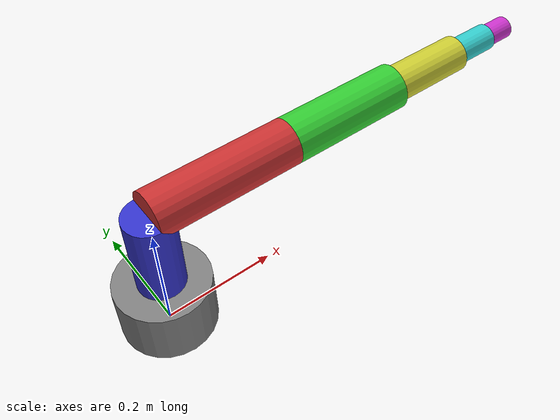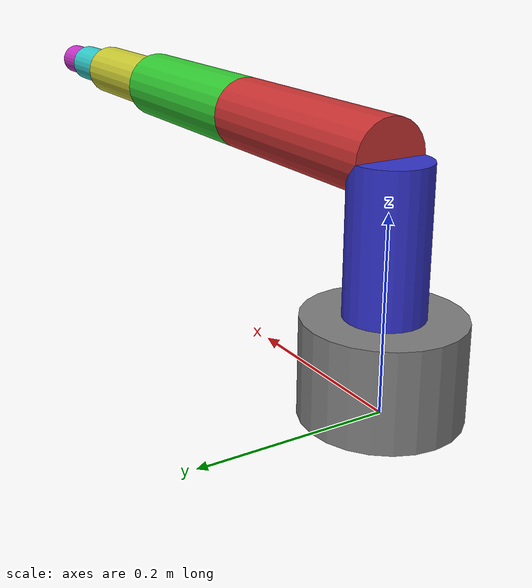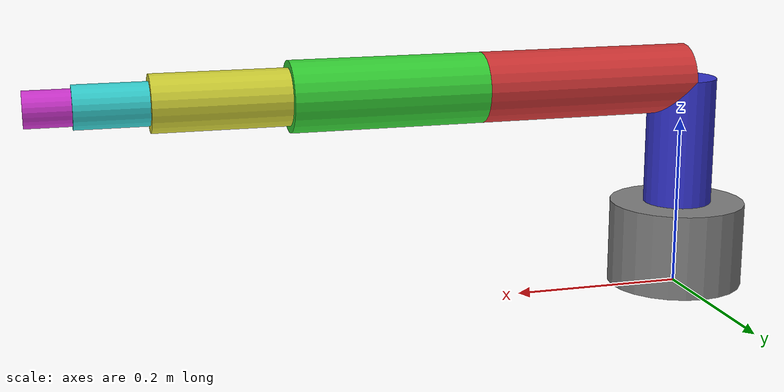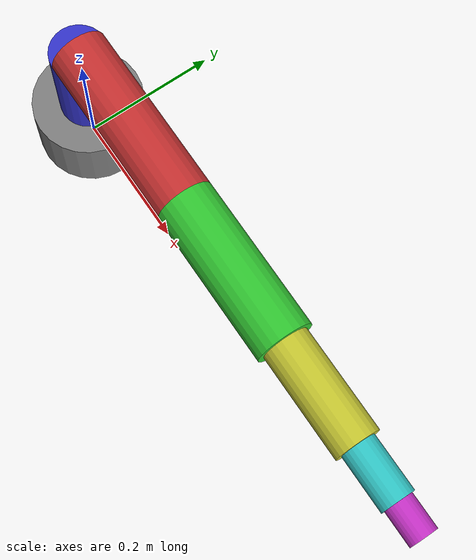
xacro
<?xml version="1.0"?>
<!-- MikataArm 6-axis robot -->
<robot xmlns:xacro="http://www.ros.org/wiki/xacro" name="mikata_arm">
  <xacro:arg name="prefix" default="" />

  <xacro:include filename="$(find mikata_arm_description)/urdf/mikata_arm.xacro" />

  <!-- Import mikata_arm ros2_control description -->

  <link name="$(arg prefix)base_link" />

  <xacro:mikata_arm
      prefix="$(arg prefix)"
      parent="$(arg prefix)base_link">
    <origin
        xyz="0 0 0"
        rpy="0 0 0" />
  </xacro:mikata_arm>

</robot>

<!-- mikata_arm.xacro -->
<robot xmlns:xacro="http://www.ros.org/wiki/xacro">

  <xacro:macro name="mikata_arm" params="prefix parent *origin">

    <!-- Joint properties -->
    <xacro:property name="joint_damping" value="0.5"/>
    <xacro:property name="joint_friction" value="0.1"/>
    <xacro:property name="joint_effort_limit" value="100.0"/>
    <xacro:property name="joint_velocity_limit" value="3.14"/>

    <!-- Link dimensions (approximate values for 6-axis arm) -->
    <xacro:property name="base_height" value="0.1"/>
    <xacro:property name="base_radius" value="0.08"/>

    <xacro:property name="link1_length" value="0.15"/>
    <xacro:property name="link2_length" value="0.25"/>
    <xacro:property name="link3_length" value="0.22"/>
    <xacro:property name="link4_length" value="0.15"/>
    <xacro:property name="link5_length" value="0.08"/>
    <xacro:property name="link6_length" value="0.05"/>

    <xacro:property name="link_radius" value="0.04"/>

    <!-- Base link attachment -->
    <joint name="${prefix}base_joint" type="fixed">
      <xacro:insert_block name="origin"/>
      <parent link="${parent}"/>
      <child link="${prefix}link_base"/>
    </joint>

    <!-- Base Link -->
    <link name="${prefix}link_base">
      <visual>
        <origin xyz="0 0 ${base_height/2}" rpy="0 0 0"/>
        <geometry>
          <cylinder radius="${base_radius}" length="${base_height}"/>
        </geometry>
        <material name="grey">
          <color rgba="0.5 0.5 0.5 1"/>
        </material>
      </visual>
      <collision>
        <origin xyz="0 0 ${base_height/2}" rpy="0 0 0"/>
        <geometry>
          <cylinder radius="${base_radius}" length="${base_height}"/>
        </geometry>
      </collision>
      <inertial>
        <origin xyz="0 0 ${base_height/2}" rpy="0 0 0"/>
        <mass value="1.0"/>
        <inertia ixx="0.001" ixy="0.0" ixz="0.0" iyy="0.001" iyz="0.0" izz="0.001"/>
      </inertial>
    </link>

    <!-- Joint 1: Base rotation -->
    <joint name="${prefix}joint1" type="revolute">
      <parent link="${prefix}link_base"/>
      <child link="${prefix}link1"/>
      <origin xyz="0 0 ${base_height}" rpy="0 0 0"/>
      <axis xyz="0 0 1"/>
      <limit lower="${-pi}" upper="${pi}" effort="${joint_effort_limit}" velocity="${joint_velocity_limit}"/>
      <dynamics damping="${joint_damping}" friction="${joint_friction}"/>
    </joint>

    <!-- Link 1 -->
    <link name="${prefix}link1">
      <visual>
        <origin xyz="0 0 ${link1_length/2}" rpy="0 0 0"/>
        <geometry>
          <cylinder radius="${link_radius}" length="${link1_length}"/>
        </geometry>
        <material name="blue">
          <color rgba="0.2 0.2 0.8 1"/>
        </material>
      </visual>
      <collision>
        <origin xyz="0 0 ${link1_length/2}" rpy="0 0 0"/>
        <geometry>
          <cylinder radius="${link_radius}" length="${link1_length}"/>
        </geometry>
      </collision>
      <inertial>
        <origin xyz="0 0 ${link1_length/2}" rpy="0 0 0"/>
        <mass value="0.5"/>
        <inertia ixx="0.001" ixy="0.0" ixz="0.0" iyy="0.001" iyz="0.0" izz="0.0001"/>
      </inertial>
    </link>

    <!-- Joint 2: Shoulder -->
    <joint name="${prefix}joint2" type="revolute">
      <parent link="${prefix}link1"/>
      <child link="${prefix}link2"/>
      <origin xyz="0 0 ${link1_length}" rpy="0 0 0"/>
      <axis xyz="0 1 0"/>
      <limit lower="${-pi/2}" upper="${pi/2}" effort="${joint_effort_limit}" velocity="${joint_velocity_limit}"/>
      <dynamics damping="${joint_damping}" friction="${joint_friction}"/>
    </joint>

    <!-- Link 2 -->
    <link name="${prefix}link2">
      <visual>
        <origin xyz="${link2_length/2} 0 0" rpy="0 ${pi/2} 0"/>
        <geometry>
          <cylinder radius="${link_radius}" length="${link2_length}"/>
        </geometry>
        <material name="red">
          <color rgba="0.8 0.2 0.2 1"/>
        </material>
      </visual>
      <collision>
        <origin xyz="${link2_length/2} 0 0" rpy="0 ${pi/2} 0"/>
        <geometry>
          <cylinder radius="${link_radius}" length="${link2_length}"/>
        </geometry>
      </collision>
      <inertial>
        <origin xyz="${link2_length/2} 0 0" rpy="0 0 0"/>
        <mass value="0.8"/>
        <inertia ixx="0.001" ixy="0.0" ixz="0.0" iyy="0.004" iyz="0.0" izz="0.004"/>
      </inertial>
    </link>

    <!-- Joint 3: Elbow -->
    <joint name="${prefix}joint3" type="revolute">
      <parent link="${prefix}link2"/>
      <child link="${prefix}link3"/>
      <origin xyz="${link2_length} 0 0" rpy="0 0 0"/>
      <axis xyz="0 1 0"/>
      <limit lower="${-pi}" upper="${pi}" effort="${joint_effort_limit}" velocity="${joint_velocity_limit}"/>
      <dynamics damping="${joint_damping}" friction="${joint_friction}"/>
    </joint>

    <!-- Link 3 -->
    <link name="${prefix}link3">
      <visual>
        <origin xyz="${link3_length/2} 0 0" rpy="0 ${pi/2} 0"/>
        <geometry>
          <cylinder radius="${link_radius}" length="${link3_length}"/>
        </geometry>
        <material name="green">
          <color rgba="0.2 0.8 0.2 1"/>
        </material>
      </visual>
      <collision>
        <origin xyz="${link3_length/2} 0 0" rpy="0 ${pi/2} 0"/>
        <geometry>
          <cylinder radius="${link_radius}" length="${link3_length}"/>
        </geometry>
      </collision>
      <inertial>
        <origin xyz="${link3_length/2} 0 0" rpy="0 0 0"/>
        <mass value="0.6"/>
        <inertia ixx="0.001" ixy="0.0" ixz="0.0" iyy="0.003" iyz="0.0" izz="0.003"/>
      </inertial>
    </link>

    <!-- Joint 4: Wrist roll -->
    <joint name="${prefix}joint4" type="revolute">
      <parent link="${prefix}link3"/>
      <child link="${prefix}link4"/>
      <origin xyz="${link3_length} 0 0" rpy="0 0 0"/>
      <axis xyz="1 0 0"/>
      <limit lower="${-pi}" upper="${pi}" effort="${joint_effort_limit}" velocity="${joint_velocity_limit}"/>
      <dynamics damping="${joint_damping}" friction="${joint_friction}"/>
    </joint>

    <!-- Link 4 -->
    <link name="${prefix}link4">
      <visual>
        <origin xyz="${link4_length/2} 0 0" rpy="0 ${pi/2} 0"/>
        <geometry>
          <cylinder radius="${link_radius*0.8}" length="${link4_length}"/>
        </geometry>
        <material name="yellow">
          <color rgba="0.8 0.8 0.2 1"/>
        </material>
      </visual>
      <collision>
        <origin xyz="${link4_length/2} 0 0" rpy="0 ${pi/2} 0"/>
        <geometry>
          <cylinder radius="${link_radius*0.8}" length="${link4_length}"/>
        </geometry>
      </collision>
      <inertial>
        <origin xyz="${link4_length/2} 0 0" rpy="0 0 0"/>
        <mass value="0.3"/>
        <inertia ixx="0.0005" ixy="0.0" ixz="0.0" iyy="0.001" iyz="0.0" izz="0.001"/>
      </inertial>
    </link>

    <!-- Joint 5: Wrist pitch -->
    <joint name="${prefix}joint5" type="revolute">
      <parent link="${prefix}link4"/>
      <child link="${prefix}link5"/>
      <origin xyz="${link4_length} 0 0" rpy="0 0 0"/>
      <axis xyz="0 1 0"/>
      <limit lower="${-pi/2}" upper="${pi/2}" effort="${joint_effort_limit}" velocity="${joint_velocity_limit}"/>
      <dynamics damping="${joint_damping}" friction="${joint_friction}"/>
    </joint>

    <!-- Link 5 -->
    <link name="${prefix}link5">
      <visual>
        <origin xyz="${link5_length/2} 0 0" rpy="0 ${pi/2} 0"/>
        <geometry>
          <cylinder radius="${link_radius*0.6}" length="${link5_length}"/>
        </geometry>
        <material name="cyan">
          <color rgba="0.2 0.8 0.8 1"/>
        </material>
      </visual>
      <collision>
        <origin xyz="${link5_length/2} 0 0" rpy="0 ${pi/2} 0"/>
        <geometry>
          <cylinder radius="${link_radius*0.6}" length="${link5_length}"/>
        </geometry>
      </collision>
      <inertial>
        <origin xyz="${link5_length/2} 0 0" rpy="0 0 0"/>
        <mass value="0.2"/>
        <inertia ixx="0.0002" ixy="0.0" ixz="0.0" iyy="0.0005" iyz="0.0" izz="0.0005"/>
      </inertial>
    </link>

    <!-- Joint 6: Wrist roll (end effector) -->
    <joint name="${prefix}joint6" type="revolute">
      <parent link="${prefix}link5"/>
      <child link="${prefix}link6"/>
      <origin xyz="${link5_length} 0 0" rpy="0 0 0"/>
      <axis xyz="1 0 0"/>
      <limit lower="${-pi}" upper="${pi}" effort="${joint_effort_limit}" velocity="${joint_velocity_limit}"/>
      <dynamics damping="${joint_damping}" friction="${joint_friction}"/>
    </joint>

    <!-- Link 6 (End effector) -->
    <link name="${prefix}link6">
      <visual>
        <origin xyz="${link6_length/2} 0 0" rpy="0 ${pi/2} 0"/>
        <geometry>
          <cylinder radius="${link_radius*0.5}" length="${link6_length}"/>
        </geometry>
        <material name="magenta">
          <color rgba="0.8 0.2 0.8 1"/>
        </material>
      </visual>
      <collision>
        <origin xyz="${link6_length/2} 0 0" rpy="0 ${pi/2} 0"/>
        <geometry>
          <cylinder radius="${link_radius*0.5}" length="${link6_length}"/>
        </geometry>
      </collision>
      <inertial>
        <origin xyz="${link6_length/2} 0 0" rpy="0 0 0"/>
        <mass value="0.1"/>
        <inertia ixx="0.0001" ixy="0.0" ixz="0.0" iyy="0.0002" iyz="0.0" izz="0.0002"/>
      </inertial>
    </link>

    <!-- Tool center point (TCP) -->
    <link name="${prefix}tcp"/>
    <joint name="${prefix}tcp_joint" type="fixed">
      <parent link="${prefix}link6"/>
      <child link="${prefix}tcp"/>
      <origin xyz="${link6_length} 0 0" rpy="0 0 0"/>
    </joint>

  </xacro:macro>

</robot>
